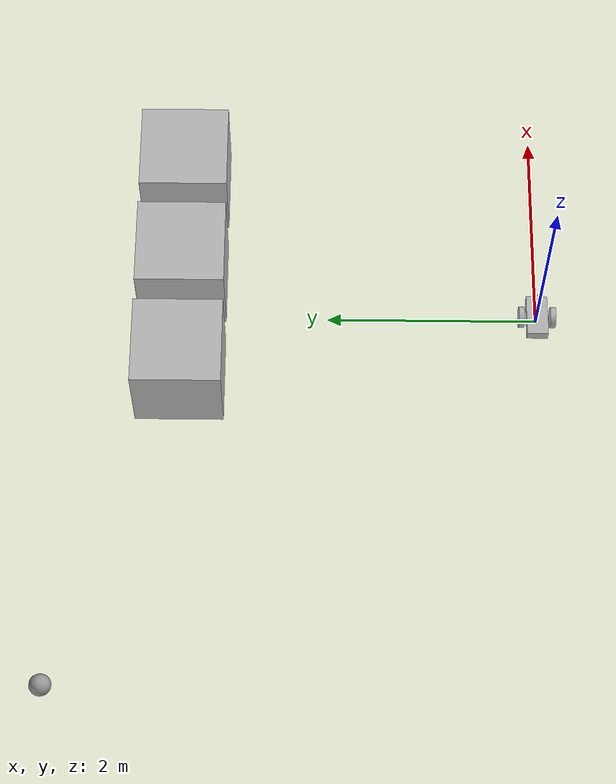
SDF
<sdf version="1.6">
 <world name="default">
  <light name="sun" type="directional">
   <pose>0 0 10 0 -0 0</pose>
   <diffuse>0.8 0.8 0.8 1</diffuse>
   <specular>0.2 0.2 0.2 1</specular>
   <attenuation>
    <range>1000</range>
    <constant>0.9</constant>
    <linear>0.01</linear>
    <quadratic>0.001</quadratic>
   </attenuation>
   <direction>-0.5 0.1 -0.9</direction>
  </light>
  <gravity>0 0 -9.8</gravity>
  <magnetic_field>6e-06 2.3e-05 -4.2e-05</magnetic_field>
  <atmosphere type="adiabatic"/>
  <physics name="default_physics" default="0" type="ode">
   <max_step_size>0.001</max_step_size>
   <real_time_factor>1</real_time_factor>
   <real_time_update_rate>1000</real_time_update_rate>
  </physics>
  <scene><ambient>0.4 0.4 0.4 1</ambient><background>0.7 0.7 0.7 1</background><shadows>1</shadows></scene>
  <spherical_coordinates>
   <surface_model>EARTH_WGS84</surface_model>
   <latitude_deg>0</latitude_deg>
   <longitude_deg>0</longitude_deg>
   <elevation>0</elevation>
   <heading_deg>0</heading_deg>
  </spherical_coordinates>
  <model name="ground_plane">
   <static>1</static>
   <link name="link">
    <collision name="collision">
     <geometry><plane><normal>0 0 1</normal><size>100 100</size></plane></geometry>
     <surface><friction><ode><mu>100</mu><mu2>50</mu2></ode></friction></surface>
    </collision>
   </link>
  </model>
  <model name="number1">
   <pose>-1 3.34 1.115 0 -0 0</pose>
   <static>1</static>
   <link name="link">
    <visual name="visual">
     <geometry><mesh><uri>model://number1/meshes/number.dae</uri><scale>1 1 1</scale></mesh></geometry>
     <material>
      <script>
       <uri>model://number1/materials/scripts</uri>
       <uri>model://number1/materials/textures</uri>
       <name>Number/One</name>
      </script>
     </material>
    </visual>
   </link>
  </model>
  <model name="number2">
   <pose>0 3.34 1.11504 0 -0 0</pose>
   <static>1</static>
   <link name="link">
    <visual name="visual">
     <geometry><mesh><uri>model://number1/meshes/number.dae</uri><scale>1 1 1</scale></mesh></geometry>
     <material>
      <script>
       <uri>model://number2/materials/scripts</uri>
       <uri>model://number2/materials/textures</uri>
       <name>Number/Two</name>
      </script>
     </material>
    </visual>
   </link>
  </model>
  <model name="number3">
   <pose>1 3.34 1.115 0 -0 0</pose>
   <static>1</static>
   <link name="link">
    <visual name="visual">
     <geometry><mesh><uri>model://number1/meshes/number.dae</uri><scale>1 1 1</scale></mesh></geometry>
     <material>
      <script>
       <uri>model://number3/materials/scripts</uri>
       <uri>model://number3/materials/textures</uri>
       <name>Number/Three</name>
      </script>
     </material>
    </visual>
   </link>
  </model>
  <model name="my_robot">
   <link name="robot_footprint">
    <inertial>
     <pose>0.001325 0 0 0 -0 0</pose>
     <mass>15.1</mass>
     <inertia>
      <ixx>0.100002</ixx>
      <ixy>0</ixy>
      <ixz>-1.48675e-07</ixz>
      <iyy>0.103976</iyy>
      <iyz>0</iyz>
      <izz>0.103976</izz>
     </inertia>
    </inertial>
    <collision name="robot_footprint_fixed_joint_lump__chassis_collision_collision">
     <geometry><box><size>0.4 0.2 0.1</size></box></geometry>
    </collision>
    <collision name="robot_footprint_fixed_joint_lump__back_caster_collision_collision_1">
     <pose>-0.15 0 -0.05 0 -0 0</pose>
     <geometry><sphere><radius>0.0499</radius></sphere></geometry>
    </collision>
    <collision name="robot_footprint_fixed_joint_lump__front_caster_collision_collision_2">
     <pose>0.15 0 -0.05 0 -0 0</pose>
     <geometry><sphere><radius>0.0499</radius></sphere></geometry>
    </collision>
    <collision name="robot_footprint_fixed_joint_lump__camera_collision_collision_3">
     <pose>0.2 0 0 0 -0 0</pose>
     <geometry><box><size>0.05 0.05 0.05</size></box></geometry>
    </collision>
    <collision name="robot_footprint_fixed_joint_lump__hokuyo_collision_collision_4">
     <pose>0.15 0 0.1 0 -0 0</pose>
     <geometry><box><size>0.1 0.1 0.1</size></box></geometry>
    </collision>
    <visual name="robot_footprint_fixed_joint_lump__chassis_visual_visual">
     <geometry><box><size>0.4 0.2 0.1</size></box></geometry>
    </visual>
    <visual name="robot_footprint_fixed_joint_lump__back_caster_visual_visual_1">
     <pose>-0.15 0 -0.05 0 -0 0</pose>
     <geometry><sphere><radius>0.05</radius></sphere></geometry>
    </visual>
    <visual name="robot_footprint_fixed_joint_lump__front_caster_visual_visual_2">
     <pose>0.15 0 -0.05 0 -0 0</pose>
     <geometry><sphere><radius>0.05</radius></sphere></geometry>
    </visual>
    <visual name="robot_footprint_fixed_joint_lump__camera_visual_visual_3">
     <pose>0.2 0 0 0 -0 0</pose>
     <geometry><box><size>0.05 0.05 0.05</size></box></geometry>
     <material><script><uri>__default__</uri><name>__default__</name></script></material>
    </visual>
    <visual name="robot_footprint_fixed_joint_lump__hokuyo_visual_visual_4">
     <pose>0.15 0 0.1 0 -0 0</pose>
     <geometry>
      <mesh>
       <scale>1 1 1</scale>
       <uri>/home/spencerbarrett/sw/class_ros/chase/src/my_robot/meshes/hokuyo.dae</uri>
      </mesh>
     </geometry>
     <material><script><uri>__default__</uri><name>__default__</name></script></material>
    </visual>
    <sensor name="camera1" type="camera">
     <update_rate>30</update_rate>
     <camera name="head">
      <horizontal_fov>1.39626</horizontal_fov>
      <image><width>800</width><height>800</height><format>R8G8B8</format></image>
      <clip><near>0.02</near><far>300</far></clip>
     </camera>
     <plugin name="camera_controller" filename="libgazebo_ros_camera.so">
      <alwaysOn>true</alwaysOn>
      <updateRate>0.0</updateRate>
      <cameraName>camera</cameraName>
      <imageTopicName>rgb/image_raw</imageTopicName>
      <cameraInfoTopicName>rgb/camera_info</cameraInfoTopicName>
      <frameName>camera</frameName>
      <hackBaseline>0.07</hackBaseline>
      <distortionK1>0.0</distortionK1>
      <distortionK2>0.0</distortionK2>
      <distortionK3>0.0</distortionK3>
      <distortionT1>0.0</distortionT1>
      <distortionT2>0.0</distortionT2>
      <robotNamespace>/</robotNamespace>
     </plugin>
     <pose>0.2 0 0 0 -0 0</pose>
    </sensor>
    <sensor name="head_hokuyo_sensor" type="ray">
     <visualize>0</visualize>
     <update_rate>40</update_rate>
     <ray>
      <scan>
       <horizontal>
        <samples>720</samples>
        <resolution>1</resolution>
        <min_angle>-1.5708</min_angle>
        <max_angle>1.5708</max_angle>
       </horizontal>
       <vertical><samples>1</samples><min_angle>0</min_angle><max_angle>0</max_angle></vertical>
      </scan>
      <range><min>0.1</min><max>30</max><resolution>0.01</resolution></range>
      <noise><type>gaussian</type><mean>0</mean><stddev>0.01</stddev></noise>
     </ray>
     <plugin name="gazebo_ros_head_hokuyo_controller" filename="libgazebo_ros_laser.so">
      <topicName>/scan</topicName>
      <frameName>hokuyo</frameName>
      <robotNamespace>/</robotNamespace>
     </plugin>
     <pose>0.15 0 0.1 0 -0 0</pose>
    </sensor>
   </link>
   <link name="left_wheel">
    <pose>0 0.15 0 0 -0 0</pose>
    <inertial>
     <pose>0 0 0 -0 1.5707 1.5707</pose>
     <mass>5</mass>
     <inertia><ixx>0.1</ixx><ixy>0</ixy><ixz>0</ixz><iyy>0.1</iyy><iyz>0</iyz><izz>0.1</izz></inertia>
    </inertial>
    <collision name="left_wheel_fixed_joint_lump__right_wheel_collision_collision">
     <pose>0 0 0 3.14159 1.57079 -1.57089</pose>
     <geometry><cylinder><length>0.05</length><radius>0.1</radius></cylinder></geometry>
    </collision>
    <visual name="left_wheel_fixed_joint_lump__right_wheel_visual_visual">
     <pose>0 0 0 3.14159 1.57079 -1.57089</pose>
     <geometry><cylinder><length>0.05</length><radius>0.1</radius></cylinder></geometry>
    </visual>
   </link>
   <joint name="left_wheel_hinge" type="revolute">
    <child>left_wheel</child>
    <parent>robot_footprint</parent>
    <axis>
     <xyz>0 1 0</xyz>
     <limit><lower>-1e+16</lower><upper>1e+16</upper></limit>
     <dynamics>
      <damping>1</damping>
      <friction>1</friction>
      <spring_reference>0</spring_reference>
      <spring_stiffness>0</spring_stiffness>
     </dynamics>
     <use_parent_model_frame>1</use_parent_model_frame>
    </axis>
   </joint>
   <link name="right_wheel">
    <pose>0 -0.15 0 0 -0 0</pose>
    <inertial>
     <pose>0 0 0 -0 1.5707 1.5707</pose>
     <mass>5</mass>
     <inertia><ixx>0.1</ixx><ixy>0</ixy><ixz>0</ixz><iyy>0.1</iyy><iyz>0</iyz><izz>0.1</izz></inertia>
    </inertial>
    <collision name="right_wheel_collision_collision">
     <pose>0 0 0 3.14159 1.57079 -1.57089</pose>
     <geometry><cylinder><length>0.05</length><radius>0.1</radius></cylinder></geometry>
    </collision>
    <visual name="right_wheel_visual_visual">
     <pose>0 0 0 3.14159 1.57079 -1.57089</pose>
     <geometry><cylinder><length>0.05</length><radius>0.1</radius></cylinder></geometry>
    </visual>
   </link>
   <joint name="right_wheel_hinge" type="revolute">
    <child>right_wheel</child>
    <parent>robot_footprint</parent>
    <axis>
     <xyz>0 1 0</xyz>
     <limit><lower>-1e+16</lower><upper>1e+16</upper></limit>
     <dynamics>
      <damping>1</damping>
      <friction>1</friction>
      <spring_reference>0</spring_reference>
      <spring_stiffness>0</spring_stiffness>
     </dynamics>
     <use_parent_model_frame>1</use_parent_model_frame>
    </axis>
   </joint>
   <static>0</static>
   <plugin name="differential_drive_controller" filename="libgazebo_ros_diff_drive.so">
    <legacyMode>false</legacyMode>
    <alwaysOn>true</alwaysOn>
    <updateRate>10</updateRate>
    <leftJoint>left_wheel_hinge</leftJoint>
    <rightJoint>right_wheel_hinge</rightJoint>
    <wheelSeparation>0.4</wheelSeparation>
    <wheelDiameter>0.2</wheelDiameter>
    <torque>10</torque>
    <commandTopic>cmd_vel</commandTopic>
    <odometryTopic>odom</odometryTopic>
    <odometryFrame>odom</odometryFrame>
    <robotBaseFrame>robot_footprint</robotBaseFrame>
    <publishWheelTF>false</publishWheelTF>
    <publishWheelJointState>false</publishWheelJointState>
    <rosDebugLevel>na</rosDebugLevel>
    <wheelAcceleration>0</wheelAcceleration>
    <wheelTorque>5</wheelTorque>
    <odometrySource>world</odometrySource>
    <publishTf>1</publishTf>
    <publishOdomTF>true</publishOdomTF>
    <robotNamespace>/</robotNamespace>
   </plugin>
   <pose>-8e-06 -0.003871 0.1 3e-06 0.000317 0.000729</pose>
  </model>
  <model name="my_ball">
   <link name="link_0">
    <inertial>
     <mass>1</mass>
     <inertia><ixx>0.1</ixx><ixy>0</ixy><ixz>0</ixz><iyy>0.1</iyy><iyz>0</iyz><izz>0.1</izz></inertia>
    </inertial>
    <visual name="visual">
     <geometry><sphere><radius>0.1</radius></sphere></geometry>
     <material>
      <lighting>1</lighting>
      <script><uri>file://media/materials/scripts/gazebo.material</uri><name>Gazebo/Grey</name></script>
      <ambient>1 1 1 1</ambient>
      <diffuse>1 1 1 1</diffuse>
      <specular>1 1 1 1</specular>
      <emissive>1 1 1 1</emissive>
      <shader type="vertex"><normal_map>__default__</normal_map></shader>
     </material>
    </visual>
    <collision name="collision">
     <geometry><sphere><radius>0.1</radius></sphere></geometry>
     <surface>
      <friction>
       <ode><mu>1</mu><mu2>1</mu2><fdir1>0 0 0</fdir1><slip1>0</slip1><slip2>0</slip2></ode>
       <torsional>
        <coefficient>1</coefficient>
        <patch_radius>0</patch_radius>
        <surface_radius>0</surface_radius>
        <use_patch_radius>1</use_patch_radius>
        <ode><slip>0</slip></ode>
       </torsional>
      </friction>
      <bounce><restitution_coefficient>0</restitution_coefficient><threshold>1e+06</threshold></bounce>
      <contact>
       <collide_without_contact>0</collide_without_contact>
       <collide_without_contact_bitmask>1</collide_without_contact_bitmask>
       <collide_bitmask>1</collide_bitmask>
       <ode>
        <soft_cfm>0</soft_cfm>
        <soft_erp>0.2</soft_erp>
        <kp>1e+13</kp>
        <kd>1</kd>
        <max_vel>0.01</max_vel>
        <min_depth>0</min_depth>
       </ode>
       <bullet>
        <split_impulse>1</split_impulse>
        <split_impulse_penetration_threshold>-0.01</split_impulse_penetration_threshold>
        <soft_cfm>0</soft_cfm>
        <soft_erp>0.2</soft_erp>
        <kp>1e+13</kp>
        <kd>1</kd>
       </bullet>
      </contact>
     </surface>
    </collision>
   </link>
   <static>0</static>
   <pose>-3.71443 4.51846 0.1 0 -0 0</pose>
  </model>
 </world>
</sdf>
